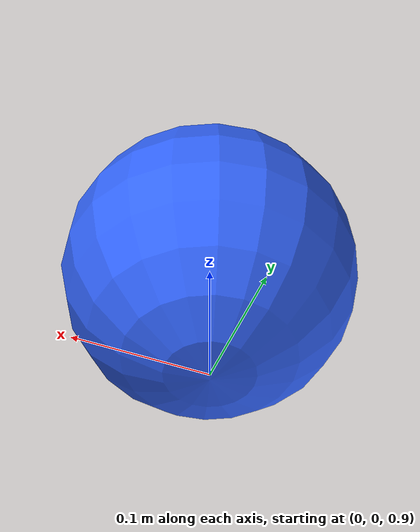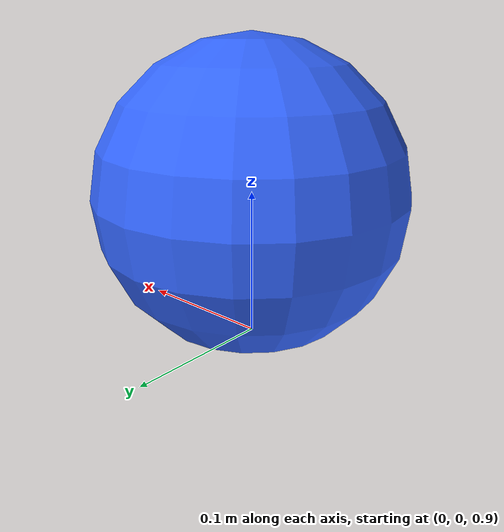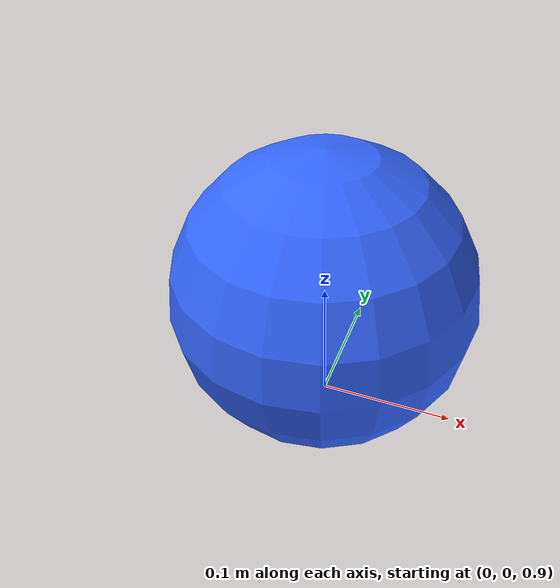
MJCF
<mujoco model="visual_collision_layers">
  <option timestep="0.002"/>
  <worldbody>
    <geom name="floor" type="plane" size="2 2 .1"/>
    <body name="ball" pos="0 0 1">
      <freejoint/>
      <geom name="visual_shell" type="sphere" size=".105" density="0"
            group="2" contype="0" conaffinity="0" rgba=".2 .4 1 1"/>
      <geom name="collision_core" type="sphere" size=".1" mass="1"
            group="3" rgba="1 .2 .2 .25"/>
    </body>
  </worldbody>
</mujoco>
